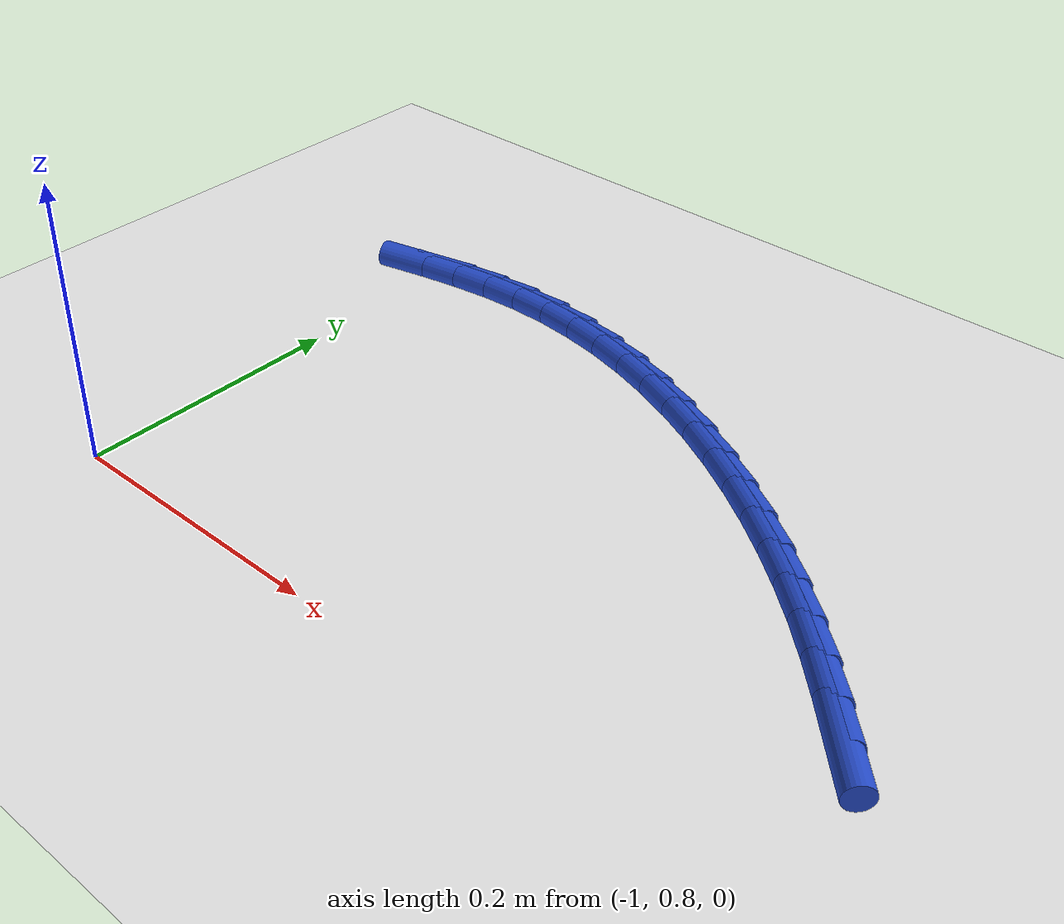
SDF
<sdf version="1.6">
 <world name="default">
  <model name="ground_plane">
   <static>1</static>
   <link name="link">
    <collision name="collision">
     <geometry><plane><normal>0 0 1</normal><size>100 100</size></plane></geometry>
     <surface><friction><ode><mu>100</mu><mu2>50</mu2></ode></friction></surface>
    </collision>
    <visual name="visual">
     <cast_shadows>0</cast_shadows>
     <geometry><plane><normal>0 0 1</normal><size>100 100</size></plane></geometry>
     <material>
      <script><uri>file://media/materials/scripts/gazebo.material</uri><name>Gazebo/WhiteGlow</name></script>
     </material>
    </visual>
   </link>
  </model>
  <model name="line">
   <link name="link_37">
    <pose>-0.5005576752478441 0.9133388541367353 0.01 0 1.57 -0.8192907854374705</pose>
    <collision name="collision">
     <geometry><cylinder><radius>0.01</radius><length>0.08</length></cylinder></geometry>
    </collision>
    <visual name="visual">
     <material>
      <script><name>Gazebo/Blue</name><uri>file://media/materials/scripts/gazebo.material</uri></script>
     </material>
     <geometry><cylinder><radius>0.01</radius><length>0.08</length></cylinder></geometry>
    </visual>
   </link>
   <link name="link_38">
    <pose>-0.5212409545109543 0.9354739151580536 0.01 0 1.57 -0.7940795031723882</pose>
    <collision name="collision">
     <geometry><cylinder><radius>0.01</radius><length>0.08</length></cylinder></geometry>
    </collision>
    <visual name="visual">
     <material>
      <script><name>Gazebo/Blue</name><uri>file://media/materials/scripts/gazebo.material</uri></script>
     </material>
     <geometry><cylinder><radius>0.01</radius><length>0.08</length></cylinder></geometry>
    </visual>
   </link>
   <link name="link_39">
    <pose>-0.5426422276199983 0.9572500353054652 0.01 0 1.57 -0.7589108666392237</pose>
    <collision name="collision">
     <geometry><cylinder><radius>0.01</radius><length>0.08</length></cylinder></geometry>
    </collision>
    <visual name="visual">
     <material>
      <script><name>Gazebo/Blue</name><uri>file://media/materials/scripts/gazebo.material</uri></script>
     </material>
     <geometry><cylinder><radius>0.01</radius><length>0.08</length></cylinder></geometry>
    </visual>
   </link>
   <link name="link_40">
    <pose>-0.5650031727831223 0.9784567217351604 0.01 0 1.57 -0.7189424117038082</pose>
    <collision name="collision">
     <geometry><cylinder><radius>0.01</radius><length>0.08</length></cylinder></geometry>
    </collision>
    <visual name="visual">
     <material>
      <script><name>Gazebo/Blue</name><uri>file://media/materials/scripts/gazebo.material</uri></script>
     </material>
     <geometry><cylinder><radius>0.01</radius><length>0.08</length></cylinder></geometry>
    </visual>
   </link>
   <link name="link_41">
    <pose>-0.5883856018967509 0.9989209885541362 0.01 0 1.57 -0.6777496393009657</pose>
    <collision name="collision">
     <geometry><cylinder><radius>0.01</radius><length>0.08</length></cylinder></geometry>
    </collision>
    <visual name="visual">
     <material>
      <script><name>Gazebo/Blue</name><uri>file://media/materials/scripts/gazebo.material</uri></script>
     </material>
     <geometry><cylinder><radius>0.01</radius><length>0.08</length></cylinder></geometry>
    </visual>
   </link>
   <link name="link_42">
    <pose>-0.6127085202759879 1.0184996288723043 0.01 0 1.57 -0.6349768824526923</pose>
    <collision name="collision">
     <geometry><cylinder><radius>0.01</radius><length>0.08</length></cylinder></geometry>
    </collision>
    <visual name="visual">
     <material>
      <script><name>Gazebo/Blue</name><uri>file://media/materials/scripts/gazebo.material</uri></script>
     </material>
     <geometry><cylinder><radius>0.01</radius><length>0.08</length></cylinder></geometry>
    </visual>
   </link>
   <link name="link_43">
    <pose>-0.6378869997466092 1.0370502560376138 0.01 0 1.57 -0.5901557132650499</pose>
    <collision name="collision">
     <geometry><cylinder><radius>0.01</radius><length>0.08</length></cylinder></geometry>
    </collision>
    <visual name="visual">
     <material>
      <script><name>Gazebo/Blue</name><uri>file://media/materials/scripts/gazebo.material</uri></script>
     </material>
     <geometry><cylinder><radius>0.01</radius><length>0.08</length></cylinder></geometry>
    </visual>
   </link>
   <link name="link_44">
    <pose>-0.663836112134391 1.0544304833980143 0.01 0 1.57 -0.5428054351767756</pose>
    <collision name="collision">
     <geometry><cylinder><radius>0.01</radius><length>0.08</length></cylinder></geometry>
    </collision>
    <visual name="visual">
     <material>
      <script><name>Gazebo/Blue</name><uri>file://media/materials/scripts/gazebo.material</uri></script>
     </material>
     <geometry><cylinder><radius>0.01</radius><length>0.08</length></cylinder></geometry>
    </visual>
   </link>
   <link name="link_45">
    <pose>-0.6904709292651088 1.0704979243014552 0.01 0 1.57 -0.4924300811574573</pose>
    <collision name="collision">
     <geometry><cylinder><radius>0.01</radius><length>0.08</length></cylinder></geometry>
    </collision>
    <visual name="visual">
     <material>
      <script><name>Gazebo/Blue</name><uri>file://media/materials/scripts/gazebo.material</uri></script>
     </material>
     <geometry><cylinder><radius>0.01</radius><length>0.08</length></cylinder></geometry>
    </visual>
   </link>
   <link name="link_46">
    <pose>-0.7177065229645391 1.085110192095886 0.01 0 1.57 -0.4385202871380731</pose>
    <collision name="collision">
     <geometry><cylinder><radius>0.01</radius><length>0.08</length></cylinder></geometry>
    </collision>
    <visual name="visual">
     <material>
      <script><name>Gazebo/Blue</name><uri>file://media/materials/scripts/gazebo.material</uri></script>
     </material>
     <geometry><cylinder><radius>0.01</radius><length>0.08</length></cylinder></geometry>
    </visual>
   </link>
   <link name="link_47">
    <pose>-0.7454579650584574 1.0981249001292563 0.01 0 1.57 -0.3805619466630048</pose>
    <collision name="collision">
     <geometry><cylinder><radius>0.01</radius><length>0.08</length></cylinder></geometry>
    </collision>
    <visual name="visual">
     <material>
      <script><name>Gazebo/Blue</name><uri>file://media/materials/scripts/gazebo.material</uri></script>
     </material>
     <geometry><cylinder><radius>0.01</radius><length>0.08</length></cylinder></geometry>
    </visual>
   </link>
   <link name="link_48">
    <pose>-0.7736403273726403 1.1093996617495159 0.01 0 1.57 -0.3180542355107313</pose>
    <collision name="collision">
     <geometry><cylinder><radius>0.01</radius><length>0.08</length></cylinder></geometry>
    </collision>
    <visual name="visual">
     <material>
      <script><name>Gazebo/Blue</name><uri>file://media/materials/scripts/gazebo.material</uri></script>
     </material>
     <geometry><cylinder><radius>0.01</radius><length>0.08</length></cylinder></geometry>
    </visual>
   </link>
   <link name="link_49">
    <pose>-0.8021686817328633 1.118792090304614 0.01 0 1.57 -0.25054004220195664</pose>
    <collision name="collision">
     <geometry><cylinder><radius>0.01</radius><length>0.08</length></cylinder></geometry>
    </collision>
    <visual name="visual">
     <material>
      <script><name>Gazebo/Blue</name><uri>file://media/materials/scripts/gazebo.material</uri></script>
     </material>
     <geometry><cylinder><radius>0.01</radius><length>0.08</length></cylinder></geometry>
    </visual>
   </link>
   <link name="link_50">
    <pose>-0.8309580999649026 1.1261597991425 0.01 0 1.57 -0.17765158357711866</pose>
    <collision name="collision">
     <geometry><cylinder><radius>0.01</radius><length>0.08</length></cylinder></geometry>
    </collision>
    <visual name="visual">
     <material>
      <script><name>Gazebo/Blue</name><uri>file://media/materials/scripts/gazebo.material</uri></script>
     </material>
     <geometry><cylinder><radius>0.01</radius><length>0.08</length></cylinder></geometry>
    </visual>
   </link>
   <link name="link_51">
    <pose>-0.8599236538945341 1.1313604016111234 0.01 0 1.57 -0.09917227274156644</pose>
    <collision name="collision">
     <geometry><cylinder><radius>0.01</radius><length>0.08</length></cylinder></geometry>
    </collision>
    <visual name="visual">
     <material>
      <script><name>Gazebo/Blue</name><uri>file://media/materials/scripts/gazebo.material</uri></script>
     </material>
     <geometry><cylinder><radius>0.01</radius><length>0.08</length></cylinder></geometry>
    </visual>
   </link>
   <link name="link_52">
    <pose>-0.8889804153475342 1.1342515110584346 0.01 0 1.57 -0.01524505226586044</pose>
    <collision name="collision">
     <geometry><cylinder><radius>0.01</radius><length>0.08</length></cylinder></geometry>
    </collision>
    <visual name="visual">
     <material>
      <script><name>Gazebo/Blue</name><uri>file://media/materials/scripts/gazebo.material</uri></script>
     </material>
     <geometry><cylinder><radius>0.01</radius><length>0.08</length></cylinder></geometry>
    </visual>
   </link>
   <link name="link_53">
    <pose>-0.9180442202745205 1.1346946246123693 0.01 0 1.57 0.06656141050745533</pose>
    <collision name="collision">
     <geometry><cylinder><radius>0.01</radius><length>0.08</length></cylinder></geometry>
    </collision>
    <visual name="visual">
     <material>
      <script><name>Gazebo/Blue</name><uri>file://media/materials/scripts/gazebo.material</uri></script>
     </material>
     <geometry><cylinder><radius>0.01</radius><length>0.08</length></cylinder></geometry>
    </visual>
   </link>
   <link name="link_54">
    <pose>-0.9470719074345628 1.1327596423712916 0.01 0 1.57 0.1347747029561479</pose>
    <collision name="collision">
     <geometry><cylinder><radius>0.01</radius><length>0.08</length></cylinder></geometry>
    </collision>
    <visual name="visual">
     <material>
      <script><name>Gazebo/Blue</name><uri>file://media/materials/scripts/gazebo.material</uri></script>
     </material>
     <geometry><cylinder><radius>0.01</radius><length>0.08</length></cylinder></geometry>
    </visual>
   </link>
   <link name="link_55">
    <pose>-0.9760812305306704 1.128826073841794 0.01 0 1.57 0.18825842575632595</pose>
    <collision name="collision">
     <geometry><cylinder><radius>0.01</radius><length>0.08</length></cylinder></geometry>
    </collision>
    <visual name="visual">
     <material>
      <script><name>Gazebo/Blue</name><uri>file://media/materials/scripts/gazebo.material</uri></script>
     </material>
     <geometry><cylinder><radius>0.01</radius><length>0.08</length></cylinder></geometry>
    </visual>
   </link>
   <link name="link_56">
    <pose>-1.0050948864708935 1.1232985531171273 0.01 0 1.57 0.2272938388361072</pose>
    <collision name="collision">
     <geometry><cylinder><radius>0.01</radius><length>0.08</length></cylinder></geometry>
    </collision>
    <visual name="visual">
     <material>
      <script><name>Gazebo/Blue</name><uri>file://media/materials/scripts/gazebo.material</uri></script>
     </material>
     <geometry><cylinder><radius>0.01</radius><length>0.08</length></cylinder></geometry>
    </visual>
   </link>
  </model>
 </world>
</sdf>
